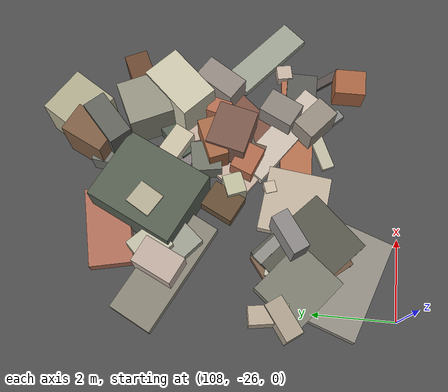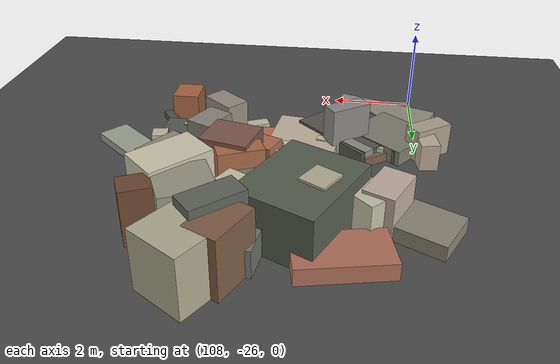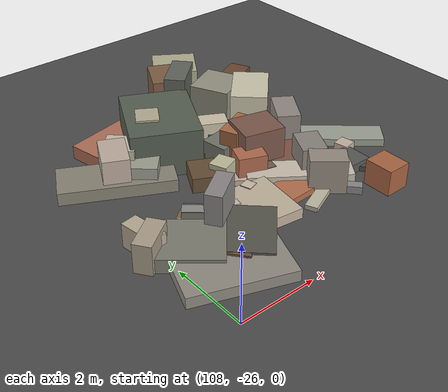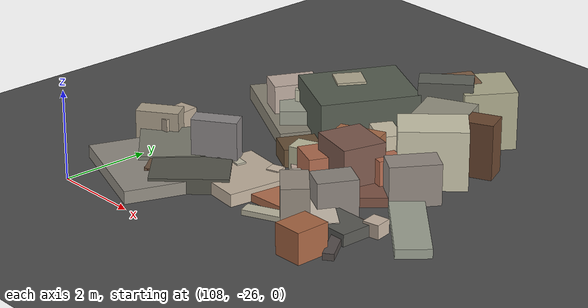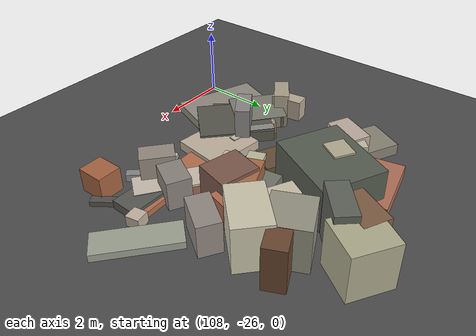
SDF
<sdf version="1.6">
 <world name="navitas_arena">
  <model name="ground_plane">
   <static>true</static>
   <link name="link">
    <collision name="collision">
     <geometry><plane><normal>0 0 1</normal><size>400 400</size></plane></geometry>
     <surface><friction><ode><mu>0.800</mu><mu2>0.800</mu2></ode></friction></surface>
    </collision>
    <visual name="visual">
     <cast_shadows>false</cast_shadows>
     <geometry><plane><normal>0 0 1</normal><size>400 400</size></plane></geometry>
     <material>
      <specular>0.04 0.04 0.04 1</specular>
      <script>
       <uri>file://media/materials/scripts/navitas_asphalt.material</uri>
       <name>Navitas/RealArenaAsphalt</name>
      </script>
     </material>
    </visual>
   </link>
  </model>
  <model name="deb_zor_1">
   <static>true</static>
   <pose>110.441 -19.929 0.000 0 0 0</pose>
   <link name="link">
    <collision name="col_0">
     <pose>0.712 -0.750 0.099 0.000 0.000 0.765</pose>
     <geometry><box><size>0.413 0.359 0.197</size></box></geometry>
    </collision>
    <visual name="vis_0">
     <pose>0.712 -0.750 0.099 0.000 0.000 0.765</pose>
     <geometry><box><size>0.413 0.359 0.197</size></box></geometry>
     <material>
      <ambient>0.44 0.28 0.24 1</ambient>
      <diffuse>0.48 0.30 0.26 1</diffuse>
      <specular>0.05 0.05 0.045 1</specular>
     </material>
    </visual>
    <collision name="col_1">
     <pose>-0.822 0.943 0.188 0.000 0.000 3.354</pose>
     <geometry><box><size>1.928 1.060 0.376</size></box></geometry>
    </collision>
    <visual name="vis_1">
     <pose>-0.822 0.943 0.188 0.000 0.000 3.354</pose>
     <geometry><box><size>1.928 1.060 0.376</size></box></geometry>
     <material>
      <ambient>0.64 0.40 0.32 1</ambient>
      <diffuse>0.69 0.44 0.35 1</diffuse>
      <specular>0.05 0.05 0.045 1</specular>
     </material>
    </visual>
    <collision name="col_2">
     <pose>0.980 0.314 0.077 0.000 0.000 2.889</pose>
     <geometry><box><size>0.251 0.249 0.154</size></box></geometry>
    </collision>
    <visual name="vis_2">
     <pose>0.980 0.314 0.077 0.000 0.000 2.889</pose>
     <geometry><box><size>0.251 0.249 0.154</size></box></geometry>
     <material>
      <ambient>0.55 0.55 0.52 1</ambient>
      <diffuse>0.60 0.60 0.56 1</diffuse>
      <specular>0.05 0.05 0.045 1</specular>
     </material>
    </visual>
    <collision name="col_3">
     <pose>0.528 0.338 0.084 0.000 0.000 1.215</pose>
     <geometry><box><size>2.171 0.161 0.168</size></box></geometry>
    </collision>
    <visual name="vis_3">
     <pose>0.528 0.338 0.084 0.000 0.000 1.215</pose>
     <geometry><box><size>2.171 0.161 0.168</size></box></geometry>
     <material>
      <ambient>0.47 0.48 0.44 1</ambient>
      <diffuse>0.50 0.52 0.47 1</diffuse>
      <specular>0.05 0.05 0.045 1</specular>
     </material>
    </visual>
    <collision name="col_4">
     <pose>-1.295 -0.167 0.457 0.000 0.000 2.353</pose>
     <geometry><box><size>0.825 0.739 0.914</size></box></geometry>
    </collision>
    <visual name="vis_4">
     <pose>-1.295 -0.167 0.457 0.000 0.000 2.353</pose>
     <geometry><box><size>0.825 0.739 0.914</size></box></geometry>
     <material>
      <ambient>0.71 0.69 0.61 1</ambient>
      <diffuse>0.76 0.75 0.66 1</diffuse>
      <specular>0.05 0.05 0.045 1</specular>
     </material>
    </visual>
   </link>
  </model>
  <model name="deb_zor_29">
   <static>true</static>
   <pose>111.769 -22.338 0.000 0 0 0</pose>
   <link name="link">
    <collision name="col_0">
     <pose>0.445 -0.607 0.061 0.000 0.000 3.070</pose>
     <geometry><box><size>0.476 0.255 0.122</size></box></geometry>
    </collision>
    <visual name="vis_0">
     <pose>0.445 -0.607 0.061 0.000 0.000 3.070</pose>
     <geometry><box><size>0.476 0.255 0.122</size></box></geometry>
     <material>
      <ambient>0.34 0.30 0.30 1</ambient>
      <diffuse>0.37 0.32 0.32 1</diffuse>
      <specular>0.05 0.05 0.045 1</specular>
     </material>
    </visual>
    <collision name="col_1">
     <pose>-0.780 -0.469 0.155 0.000 0.000 3.458</pose>
     <geometry><box><size>0.293 0.284 0.310</size></box></geometry>
    </collision>
    <visual name="vis_1">
     <pose>-0.780 -0.469 0.155 0.000 0.000 3.458</pose>
     <geometry><box><size>0.293 0.284 0.310</size></box></geometry>
     <material>
      <ambient>0.75 0.69 0.61 1</ambient>
      <diffuse>0.81 0.74 0.66 1</diffuse>
      <specular>0.05 0.05 0.045 1</specular>
     </material>
    </visual>
    <collision name="col_2">
     <pose>0.214 0.630 0.082 0.000 0.000 4.083</pose>
     <geometry><box><size>2.214 1.535 0.163</size></box></geometry>
    </collision>
    <visual name="vis_2">
     <pose>0.214 0.630 0.082 0.000 0.000 4.083</pose>
     <geometry><box><size>2.214 1.535 0.163</size></box></geometry>
     <material>
      <ambient>0.73 0.64 0.58 1</ambient>
      <diffuse>0.78 0.69 0.63 1</diffuse>
      <specular>0.05 0.05 0.045 1</specular>
     </material>
    </visual>
    <collision name="col_3">
     <pose>-0.764 -0.787 0.115 0.000 0.000 3.619</pose>
     <geometry><box><size>0.326 0.465 0.229</size></box></geometry>
    </collision>
    <visual name="vis_3">
     <pose>-0.764 -0.787 0.115 0.000 0.000 3.619</pose>
     <geometry><box><size>0.326 0.465 0.229</size></box></geometry>
     <material>
      <ambient>0.55 0.53 0.49 1</ambient>
      <diffuse>0.60 0.57 0.53 1</diffuse>
      <specular>0.05 0.05 0.045 1</specular>
     </material>
    </visual>
   </link>
  </model>
  <model name="deb_zor_52">
   <static>true</static>
   <pose>111.951 -20.939 0.000 0 0 0</pose>
   <link name="link">
    <collision name="col_0">
     <pose>-0.234 0.557 0.096 0.000 0.000 1.469</pose>
     <geometry><box><size>1.580 0.176 0.192</size></box></geometry>
    </collision>
    <visual name="vis_0">
     <pose>-0.234 0.557 0.096 0.000 0.000 1.469</pose>
     <geometry><box><size>1.580 0.176 0.192</size></box></geometry>
     <material>
      <ambient>0.43 0.29 0.20 1</ambient>
      <diffuse>0.46 0.31 0.21 1</diffuse>
      <specular>0.05 0.05 0.045 1</specular>
     </material>
    </visual>
    <collision name="col_1">
     <pose>0.053 0.534 0.223 0.000 0.000 0.735</pose>
     <geometry><box><size>0.964 0.388 0.445</size></box></geometry>
    </collision>
    <visual name="vis_1">
     <pose>0.053 0.534 0.223 0.000 0.000 0.735</pose>
     <geometry><box><size>0.964 0.388 0.445</size></box></geometry>
     <material>
      <ambient>0.31 0.35 0.31 1</ambient>
      <diffuse>0.34 0.38 0.33 1</diffuse>
      <specular>0.05 0.05 0.045 1</specular>
     </material>
    </visual>
    <collision name="col_2">
     <pose>-0.386 -0.221 0.291 0.000 0.000 1.740</pose>
     <geometry><box><size>0.731 0.771 0.581</size></box></geometry>
    </collision>
    <visual name="vis_2">
     <pose>-0.386 -0.221 0.291 0.000 0.000 1.740</pose>
     <geometry><box><size>0.731 0.771 0.581</size></box></geometry>
     <material>
      <ambient>0.41 0.43 0.38 1</ambient>
      <diffuse>0.45 0.46 0.41 1</diffuse>
      <specular>0.05 0.05 0.045 1</specular>
     </material>
    </visual>
    <collision name="col_3">
     <pose>-0.155 0.540 0.379 0.000 0.000 2.654</pose>
     <geometry><box><size>0.803 0.523 0.758</size></box></geometry>
    </collision>
    <visual name="vis_3">
     <pose>-0.155 0.540 0.379 0.000 0.000 2.654</pose>
     <geometry><box><size>0.803 0.523 0.758</size></box></geometry>
     <material>
      <ambient>0.74 0.70 0.61 1</ambient>
      <diffuse>0.80 0.76 0.66 1</diffuse>
      <specular>0.05 0.05 0.045 1</specular>
     </material>
    </visual>
   </link>
  </model>
  <model name="deb_zor_69">
   <static>true</static>
   <pose>108.692 -22.921 0.000 0 0 0</pose>
   <link name="link">
    <collision name="col_0">
     <pose>-0.104 -0.722 0.183 0.000 0.000 2.451</pose>
     <geometry><box><size>1.564 1.412 0.365</size></box></geometry>
    </collision>
    <visual name="vis_0">
     <pose>-0.104 -0.722 0.183 0.000 0.000 2.451</pose>
     <geometry><box><size>1.564 1.412 0.365</size></box></geometry>
     <material>
      <ambient>0.45 0.45 0.41 1</ambient>
      <diffuse>0.49 0.49 0.44 1</diffuse>
      <specular>0.05 0.05 0.045 1</specular>
     </material>
    </visual>
    <collision name="col_1">
     <pose>0.169 0.038 0.104 0.000 0.000 0.628</pose>
     <geometry><box><size>1.047 0.298 0.207</size></box></geometry>
    </collision>
    <visual name="vis_1">
     <pose>0.169 0.038 0.104 0.000 0.000 0.628</pose>
     <geometry><box><size>1.047 0.298 0.207</size></box></geometry>
     <material>
      <ambient>0.46 0.36 0.28 1</ambient>
      <diffuse>0.49 0.38 0.30 1</diffuse>
      <specular>0.05 0.05 0.045 1</specular>
     </material>
    </visual>
    <collision name="col_2">
     <pose>0.841 -0.065 0.182 0.000 0.000 2.425</pose>
     <geometry><box><size>1.123 0.283 0.364</size></box></geometry>
    </collision>
    <visual name="vis_2">
     <pose>0.841 -0.065 0.182 0.000 0.000 2.425</pose>
     <geometry><box><size>1.123 0.283 0.364</size></box></geometry>
     <material>
      <ambient>0.51 0.51 0.49 1</ambient>
      <diffuse>0.56 0.55 0.53 1</diffuse>
      <specular>0.05 0.05 0.045 1</specular>
     </material>
    </visual>
    <collision name="col_3">
     <pose>0.865 -0.132 0.159 0.000 0.000 2.965</pose>
     <geometry><box><size>1.616 0.211 0.318</size></box></geometry>
    </collision>
    <visual name="vis_3">
     <pose>0.865 -0.132 0.159 0.000 0.000 2.965</pose>
     <geometry><box><size>1.616 0.211 0.318</size></box></geometry>
     <material>
      <ambient>0.72 0.70 0.62 1</ambient>
      <diffuse>0.77 0.75 0.67 1</diffuse>
      <specular>0.05 0.05 0.045 1</specular>
     </material>
    </visual>
    <collision name="col_4">
     <pose>-0.867 -0.057 0.322 0.000 0.000 1.725</pose>
     <geometry><box><size>0.954 0.437 0.643</size></box></geometry>
    </collision>
    <visual name="vis_4">
     <pose>-0.867 -0.057 0.322 0.000 0.000 1.725</pose>
     <geometry><box><size>0.954 0.437 0.643</size></box></geometry>
     <material>
      <ambient>0.67 0.62 0.55 1</ambient>
      <diffuse>0.73 0.67 0.59 1</diffuse>
      <specular>0.05 0.05 0.045 1</specular>
     </material>
    </visual>
    <collision name="col_5">
     <pose>-0.944 -0.392 0.389 0.000 0.000 2.186</pose>
     <geometry><box><size>0.455 0.961 0.778</size></box></geometry>
    </collision>
    <visual name="vis_5">
     <pose>-0.944 -0.392 0.389 0.000 0.000 2.186</pose>
     <geometry><box><size>0.455 0.961 0.778</size></box></geometry>
     <material>
      <ambient>0.63 0.59 0.51 1</ambient>
      <diffuse>0.68 0.63 0.55 1</diffuse>
      <specular>0.05 0.05 0.045 1</specular>
     </material>
    </visual>
   </link>
  </model>
  <model name="deb_zor_135">
   <static>true</static>
   <pose>109.284 -20.646 0.000 0 0 0</pose>
   <link name="link">
    <collision name="col_0">
     <pose>-0.075 0.511 0.156 0.000 0.000 1.912</pose>
     <geometry><box><size>2.167 0.295 0.313</size></box></geometry>
    </collision>
    <visual name="vis_0">
     <pose>-0.075 0.511 0.156 0.000 0.000 1.912</pose>
     <geometry><box><size>2.167 0.295 0.313</size></box></geometry>
     <material>
      <ambient>0.57 0.36 0.22 1</ambient>
      <diffuse>0.62 0.39 0.24 1</diffuse>
      <specular>0.05 0.05 0.045 1</specular>
     </material>
    </visual>
    <collision name="col_1">
     <pose>-0.213 0.362 0.172 0.000 0.000 2.957</pose>
     <geometry><box><size>0.377 0.377 0.343</size></box></geometry>
    </collision>
    <visual name="vis_1">
     <pose>-0.213 0.362 0.172 0.000 0.000 2.957</pose>
     <geometry><box><size>0.377 0.377 0.343</size></box></geometry>
     <material>
      <ambient>0.69 0.66 0.57 1</ambient>
      <diffuse>0.74 0.72 0.61 1</diffuse>
      <specular>0.05 0.05 0.045 1</specular>
     </material>
    </visual>
    <collision name="col_2">
     <pose>-0.506 0.303 0.489 0.000 0.000 4.262</pose>
     <geometry><box><size>1.055 0.683 0.978</size></box></geometry>
    </collision>
    <visual name="vis_2">
     <pose>-0.506 0.303 0.489 0.000 0.000 4.262</pose>
     <geometry><box><size>1.055 0.683 0.978</size></box></geometry>
     <material>
      <ambient>0.69 0.63 0.58 1</ambient>
      <diffuse>0.75 0.68 0.63 1</diffuse>
      <specular>0.05 0.05 0.045 1</specular>
     </material>
    </visual>
    <collision name="col_3">
     <pose>0.052 -0.008 0.326 0.000 0.000 2.419</pose>
     <geometry><box><size>0.934 0.901 0.652</size></box></geometry>
    </collision>
    <visual name="vis_3">
     <pose>0.052 -0.008 0.326 0.000 0.000 2.419</pose>
     <geometry><box><size>0.934 0.901 0.652</size></box></geometry>
     <material>
      <ambient>0.57 0.58 0.52 1</ambient>
      <diffuse>0.62 0.63 0.57 1</diffuse>
      <specular>0.05 0.05 0.045 1</specular>
     </material>
    </visual>
    <collision name="col_4">
     <pose>0.095 0.625 0.075 0.000 0.000 2.460</pose>
     <geometry><box><size>0.512 0.324 0.149</size></box></geometry>
    </collision>
    <visual name="vis_4">
     <pose>0.095 0.625 0.075 0.000 0.000 2.460</pose>
     <geometry><box><size>0.512 0.324 0.149</size></box></geometry>
     <material>
      <ambient>0.42 0.42 0.40 1</ambient>
      <diffuse>0.45 0.45 0.43 1</diffuse>
      <specular>0.05 0.05 0.045 1</specular>
     </material>
    </visual>
    <collision name="col_5">
     <pose>-0.544 0.195 0.169 0.000 0.000 2.663</pose>
     <geometry><box><size>2.909 1.119 0.339</size></box></geometry>
    </collision>
    <visual name="vis_5">
     <pose>-0.544 0.195 0.169 0.000 0.000 2.663</pose>
     <geometry><box><size>2.909 1.119 0.339</size></box></geometry>
     <material>
      <ambient>0.50 0.48 0.42 1</ambient>
      <diffuse>0.54 0.52 0.46 1</diffuse>
      <specular>0.05 0.05 0.045 1</specular>
     </material>
    </visual>
   </link>
  </model>
  <model name="deb_zor_253">
   <static>true</static>
   <pose>112.962 -22.105 0.000 0 0 0</pose>
   <link name="link">
    <collision name="col_0">
     <pose>-1.010 -0.368 0.149 0.000 0.000 1.329</pose>
     <geometry><box><size>0.282 0.291 0.298</size></box></geometry>
    </collision>
    <visual name="vis_0">
     <pose>-1.010 -0.368 0.149 0.000 0.000 1.329</pose>
     <geometry><box><size>0.282 0.291 0.298</size></box></geometry>
     <material>
      <ambient>0.42 0.33 0.25 1</ambient>
      <diffuse>0.46 0.36 0.28 1</diffuse>
      <specular>0.05 0.05 0.045 1</specular>
     </material>
    </visual>
    <collision name="col_1">
     <pose>-0.498 -0.094 0.108 0.000 0.000 0.839</pose>
     <geometry><box><size>1.791 1.179 0.215</size></box></geometry>
    </collision>
    <visual name="vis_1">
     <pose>-0.498 -0.094 0.108 0.000 0.000 0.839</pose>
     <geometry><box><size>1.791 1.179 0.215</size></box></geometry>
     <material>
      <ambient>0.47 0.30 0.25 1</ambient>
      <diffuse>0.50 0.33 0.27 1</diffuse>
      <specular>0.05 0.05 0.045 1</specular>
     </material>
    </visual>
    <collision name="col_2">
     <pose>0.615 0.766 0.461 0.000 0.000 0.998</pose>
     <geometry><box><size>1.108 0.625 0.921</size></box></geometry>
    </collision>
    <visual name="vis_2">
     <pose>0.615 0.766 0.461 0.000 0.000 0.998</pose>
     <geometry><box><size>1.108 0.625 0.921</size></box></geometry>
     <material>
      <ambient>0.53 0.50 0.48 1</ambient>
      <diffuse>0.58 0.54 0.51 1</diffuse>
      <specular>0.05 0.05 0.045 1</specular>
     </material>
    </visual>
    <collision name="col_3">
     <pose>-1.083 -0.310 0.100 0.000 0.000 2.501</pose>
     <geometry><box><size>0.254 0.335 0.200</size></box></geometry>
    </collision>
    <visual name="vis_3">
     <pose>-1.083 -0.310 0.100 0.000 0.000 2.501</pose>
     <geometry><box><size>0.254 0.335 0.200</size></box></geometry>
     <material>
      <ambient>0.73 0.69 0.59 1</ambient>
      <diffuse>0.78 0.74 0.63 1</diffuse>
      <specular>0.05 0.05 0.045 1</specular>
     </material>
    </visual>
    <collision name="col_4">
     <pose>-0.999 0.475 0.108 0.000 0.000 1.956</pose>
     <geometry><box><size>1.485 0.803 0.217</size></box></geometry>
    </collision>
    <visual name="vis_4">
     <pose>-0.999 0.475 0.108 0.000 0.000 1.956</pose>
     <geometry><box><size>1.485 0.803 0.217</size></box></geometry>
     <material>
      <ambient>0.35 0.34 0.31 1</ambient>
      <diffuse>0.38 0.37 0.33 1</diffuse>
      <specular>0.05 0.05 0.045 1</specular>
     </material>
    </visual>
    <collision name="col_5">
     <pose>-0.121 0.737 0.385 0.000 0.000 1.312</pose>
     <geometry><box><size>0.559 0.404 0.771</size></box></geometry>
    </collision>
    <visual name="vis_5">
     <pose>-0.121 0.737 0.385 0.000 0.000 1.312</pose>
     <geometry><box><size>0.559 0.404 0.771</size></box></geometry>
     <material>
      <ambient>0.66 0.39 0.29 1</ambient>
      <diffuse>0.71 0.43 0.32 1</diffuse>
      <specular>0.05 0.05 0.045 1</specular>
     </material>
    </visual>
   </link>
  </model>
  <model name="deb_zor_316">
   <static>true</static>
   <pose>113.432 -22.343 0.000 0 0 0</pose>
   <link name="link">
    <collision name="col_0">
     <pose>1.217 -0.106 0.103 0.000 0.000 -0.709</pose>
     <geometry><box><size>2.195 0.747 0.206</size></box></geometry>
    </collision>
    <visual name="vis_0">
     <pose>1.217 -0.106 0.103 0.000 0.000 -0.709</pose>
     <geometry><box><size>2.195 0.747 0.206</size></box></geometry>
     <material>
      <ambient>0.57 0.59 0.53 1</ambient>
      <diffuse>0.62 0.64 0.58 1</diffuse>
      <specular>0.05 0.05 0.045 1</specular>
     </material>
    </visual>
    <collision name="col_1">
     <pose>-0.503 -0.580 0.418 0.000 0.000 -0.474</pose>
     <geometry><box><size>0.654 0.881 0.836</size></box></geometry>
    </collision>
    <visual name="vis_1">
     <pose>-0.503 -0.580 0.418 0.000 0.000 -0.474</pose>
     <geometry><box><size>0.654 0.881 0.836</size></box></geometry>
     <material>
      <ambient>0.51 0.48 0.45 1</ambient>
      <diffuse>0.55 0.52 0.49 1</diffuse>
      <specular>0.05 0.05 0.045 1</specular>
     </material>
    </visual>
    <collision name="col_2">
     <pose>-0.972 -0.715 0.140 0.000 0.000 -0.624</pose>
     <geometry><box><size>2.681 0.747 0.280</size></box></geometry>
    </collision>
    <visual name="vis_2">
     <pose>-0.972 -0.715 0.140 0.000 0.000 -0.624</pose>
     <geometry><box><size>2.681 0.747 0.280</size></box></geometry>
     <material>
      <ambient>0.74 0.70 0.64 1</ambient>
      <diffuse>0.80 0.75 0.69 1</diffuse>
      <specular>0.05 0.05 0.045 1</specular>
     </material>
    </visual>
    <collision name="col_3">
     <pose>0.770 -0.614 0.156 0.000 0.000 1.761</pose>
     <geometry><box><size>0.384 0.376 0.313</size></box></geometry>
    </collision>
    <visual name="vis_3">
     <pose>0.770 -0.614 0.156 0.000 0.000 1.761</pose>
     <geometry><box><size>0.384 0.376 0.313</size></box></geometry>
     <material>
      <ambient>0.73 0.66 0.60 1</ambient>
      <diffuse>0.78 0.71 0.64 1</diffuse>
      <specular>0.05 0.05 0.045 1</specular>
     </material>
    </visual>
   </link>
  </model>
  <model name="deb_zor_324">
   <static>true</static>
   <pose>109.594 -23.956 0.000 0 0 0</pose>
   <link name="link">
    <collision name="col_0">
     <pose>-0.099 0.134 0.173 0.000 0.000 2.382</pose>
     <geometry><box><size>2.176 1.691 0.345</size></box></geometry>
    </collision>
    <visual name="vis_0">
     <pose>-0.099 0.134 0.173 0.000 0.000 2.382</pose>
     <geometry><box><size>2.176 1.691 0.345</size></box></geometry>
     <material>
      <ambient>0.32 0.31 0.28 1</ambient>
      <diffuse>0.34 0.34 0.30 1</diffuse>
      <specular>0.05 0.05 0.045 1</specular>
     </material>
    </visual>
    <collision name="col_1">
     <pose>1.039 0.513 0.142 0.000 0.000 1.445</pose>
     <geometry><box><size>1.572 1.628 0.283</size></box></geometry>
    </collision>
    <visual name="vis_1">
     <pose>1.039 0.513 0.142 0.000 0.000 1.445</pose>
     <geometry><box><size>1.572 1.628 0.283</size></box></geometry>
     <material>
      <ambient>0.70 0.65 0.58 1</ambient>
      <diffuse>0.76 0.70 0.62 1</diffuse>
      <specular>0.05 0.05 0.045 1</specular>
     </material>
    </visual>
    <collision name="col_2">
     <pose>-0.189 0.104 0.166 0.000 0.000 1.397</pose>
     <geometry><box><size>2.045 0.136 0.332</size></box></geometry>
    </collision>
    <visual name="vis_2">
     <pose>-0.189 0.104 0.166 0.000 0.000 1.397</pose>
     <geometry><box><size>2.045 0.136 0.332</size></box></geometry>
     <material>
      <ambient>0.57 0.33 0.26 1</ambient>
      <diffuse>0.62 0.36 0.28 1</diffuse>
      <specular>0.05 0.05 0.045 1</specular>
     </material>
    </visual>
    <collision name="col_3">
     <pose>-0.731 -0.754 0.144 0.000 0.000 2.791</pose>
     <geometry><box><size>2.532 1.532 0.288</size></box></geometry>
    </collision>
    <visual name="vis_3">
     <pose>-0.731 -0.754 0.144 0.000 0.000 2.791</pose>
     <geometry><box><size>2.532 1.532 0.288</size></box></geometry>
     <material>
      <ambient>0.53 0.51 0.47 1</ambient>
      <diffuse>0.57 0.55 0.51 1</diffuse>
      <specular>0.05 0.05 0.045 1</specular>
     </material>
    </visual>
    <collision name="col_4">
     <pose>0.082 0.647 0.585 0.000 0.000 3.745</pose>
     <geometry><box><size>1.003 0.428 1.169</size></box></geometry>
    </collision>
    <visual name="vis_4">
     <pose>0.082 0.647 0.585 0.000 0.000 3.745</pose>
     <geometry><box><size>1.003 0.428 1.169</size></box></geometry>
     <material>
      <ambient>0.51 0.49 0.49 1</ambient>
      <diffuse>0.55 0.53 0.53 1</diffuse>
      <specular>0.05 0.05 0.045 1</specular>
     </material>
    </visual>
    <collision name="col_5">
     <pose>-0.709 0.172 0.169 0.000 0.000 2.246</pose>
     <geometry><box><size>2.187 0.860 0.338</size></box></geometry>
    </collision>
    <visual name="vis_5">
     <pose>-0.709 0.172 0.169 0.000 0.000 2.246</pose>
     <geometry><box><size>2.187 0.860 0.338</size></box></geometry>
     <material>
      <ambient>0.40 0.30 0.23 1</ambient>
      <diffuse>0.43 0.33 0.25 1</diffuse>
      <specular>0.05 0.05 0.045 1</specular>
     </material>
    </visual>
   </link>
  </model>
  <model name="deb_zor_327">
   <static>true</static>
   <pose>113.297 -23.731 0.000 0 0 0</pose>
   <link name="link">
    <collision name="col_0">
     <pose>-0.723 0.353 0.085 0.000 0.000 3.189</pose>
     <geometry><box><size>3.027 0.803 0.170</size></box></geometry>
    </collision>
    <visual name="vis_0">
     <pose>-0.723 0.353 0.085 0.000 0.000 3.189</pose>
     <geometry><box><size>3.027 0.803 0.170</size></box></geometry>
     <material>
      <ambient>0.66 0.41 0.29 1</ambient>
      <diffuse>0.71 0.44 0.31 1</diffuse>
      <specular>0.05 0.05 0.045 1</specular>
     </material>
    </visual>
    <collision name="col_1">
     <pose>-0.247 -0.588 0.103 0.000 0.000 2.299</pose>
     <geometry><box><size>0.477 0.246 0.206</size></box></geometry>
    </collision>
    <visual name="vis_1">
     <pose>-0.247 -0.588 0.103 0.000 0.000 2.299</pose>
     <geometry><box><size>0.477 0.246 0.206</size></box></geometry>
     <material>
      <ambient>0.49 0.50 0.49 1</ambient>
      <diffuse>0.53 0.54 0.53 1</diffuse>
      <specular>0.05 0.05 0.045 1</specular>
     </material>
    </visual>
    <collision name="col_2">
     <pose>0.579 -0.912 0.344 0.000 0.000 1.577</pose>
     <geometry><box><size>0.772 0.669 0.689</size></box></geometry>
    </collision>
    <visual name="vis_2">
     <pose>0.579 -0.912 0.344 0.000 0.000 1.577</pose>
     <geometry><box><size>0.772 0.669 0.689</size></box></geometry>
     <material>
      <ambient>0.62 0.37 0.24 1</ambient>
      <diffuse>0.66 0.40 0.26 1</diffuse>
      <specular>0.05 0.05 0.045 1</specular>
     </material>
    </visual>
    <collision name="col_3">
     <pose>-1.040 -0.270 0.061 0.000 0.000 3.556</pose>
     <geometry><box><size>1.236 0.316 0.122</size></box></geometry>
    </collision>
    <visual name="vis_3">
     <pose>-1.040 -0.270 0.061 0.000 0.000 3.556</pose>
     <geometry><box><size>1.236 0.316 0.122</size></box></geometry>
     <material>
      <ambient>0.70 0.68 0.60 1</ambient>
      <diffuse>0.75 0.73 0.64 1</diffuse>
      <specular>0.05 0.05 0.045 1</specular>
     </material>
    </visual>
    <collision name="col_4">
     <pose>0.620 -0.001 0.073 0.000 0.000 2.191</pose>
     <geometry><box><size>1.757 0.235 0.147</size></box></geometry>
    </collision>
    <visual name="vis_4">
     <pose>0.620 -0.001 0.073 0.000 0.000 2.191</pose>
     <geometry><box><size>1.757 0.235 0.147</size></box></geometry>
     <material>
      <ambient>0.31 0.29 0.28 1</ambient>
      <diffuse>0.34 0.31 0.30 1</diffuse>
      <specular>0.05 0.05 0.045 1</specular>
     </material>
    </visual>
    <collision name="col_5">
     <pose>-0.609 -0.045 0.462 0.000 0.000 4.007</pose>
     <geometry><box><size>0.592 0.936 0.925</size></box></geometry>
    </collision>
    <visual name="vis_5">
     <pose>-0.609 -0.045 0.462 0.000 0.000 4.007</pose>
     <geometry><box><size>0.592 0.936 0.925</size></box></geometry>
     <material>
      <ambient>0.54 0.51 0.46 1</ambient>
      <diffuse>0.59 0.55 0.50 1</diffuse>
      <specular>0.05 0.05 0.045 1</specular>
     </material>
    </visual>
    <collision name="col_6">
     <pose>0.009 0.294 0.131 0.000 0.000 3.128</pose>
     <geometry><box><size>1.794 0.770 0.262</size></box></geometry>
    </collision>
    <visual name="vis_6">
     <pose>0.009 0.294 0.131 0.000 0.000 3.128</pose>
     <geometry><box><size>1.794 0.770 0.262</size></box></geometry>
     <material>
      <ambient>0.33 0.33 0.31 1</ambient>
      <diffuse>0.35 0.35 0.33 1</diffuse>
      <specular>0.05 0.05 0.045 1</specular>
     </material>
    </visual>
   </link>
  </model>
  <model name="deb_zor_331">
   <static>true</static>
   <pose>111.406 -21.141 0.000 0 0 0</pose>
   <link name="link">
    <collision name="col_0">
     <pose>0.128 0.476 0.171 0.000 0.000 1.423</pose>
     <geometry><box><size>0.297 0.439 0.343</size></box></geometry>
    </collision>
    <visual name="vis_0">
     <pose>0.128 0.476 0.171 0.000 0.000 1.423</pose>
     <geometry><box><size>0.297 0.439 0.343</size></box></geometry>
     <material>
      <ambient>0.48 0.45 0.45 1</ambient>
      <diffuse>0.52 0.48 0.49 1</diffuse>
      <specular>0.05 0.05 0.045 1</specular>
     </material>
    </visual>
    <collision name="col_1">
     <pose>-0.493 -0.778 0.278 0.000 0.000 0.368</pose>
     <geometry><box><size>0.526 0.479 0.556</size></box></geometry>
    </collision>
    <visual name="vis_1">
     <pose>-0.493 -0.778 0.278 0.000 0.000 0.368</pose>
     <geometry><box><size>0.526 0.479 0.556</size></box></geometry>
     <material>
      <ambient>0.70 0.68 0.57 1</ambient>
      <diffuse>0.75 0.74 0.62 1</diffuse>
      <specular>0.05 0.05 0.045 1</specular>
     </material>
    </visual>
    <collision name="col_2">
     <pose>0.128 1.091 0.065 0.000 0.000 1.647</pose>
     <geometry><box><size>0.427 0.235 0.131</size></box></geometry>
    </collision>
    <visual name="vis_2">
     <pose>0.128 1.091 0.065 0.000 0.000 1.647</pose>
     <geometry><box><size>0.427 0.235 0.131</size></box></geometry>
     <material>
      <ambient>0.74 0.71 0.62 1</ambient>
      <diffuse>0.80 0.77 0.67 1</diffuse>
      <specular>0.05 0.05 0.045 1</specular>
     </material>
    </visual>
    <collision name="col_3">
     <pose>0.164 -1.041 0.346 0.000 0.000 -0.390</pose>
     <geometry><box><size>0.753 0.580 0.691</size></box></geometry>
    </collision>
    <visual name="vis_3">
     <pose>0.164 -1.041 0.346 0.000 0.000 -0.390</pose>
     <geometry><box><size>0.753 0.580 0.691</size></box></geometry>
     <material>
      <ambient>0.64 0.39 0.29 1</ambient>
      <diffuse>0.69 0.42 0.31 1</diffuse>
      <specular>0.05 0.05 0.045 1</specular>
     </material>
    </visual>
    <collision name="col_4">
     <pose>-0.924 -0.546 0.203 0.000 0.000 -0.472</pose>
     <geometry><box><size>0.695 0.852 0.406</size></box></geometry>
    </collision>
    <visual name="vis_4">
     <pose>-0.924 -0.546 0.203 0.000 0.000 -0.472</pose>
     <geometry><box><size>0.695 0.852 0.406</size></box></geometry>
     <material>
      <ambient>0.37 0.28 0.19 1</ambient>
      <diffuse>0.40 0.31 0.21 1</diffuse>
      <specular>0.05 0.05 0.045 1</specular>
     </material>
    </visual>
    <collision name="col_5">
     <pose>0.509 -0.158 0.496 0.000 0.000 0.395</pose>
     <geometry><box><size>1.040 0.486 0.993</size></box></geometry>
    </collision>
    <visual name="vis_5">
     <pose>0.509 -0.158 0.496 0.000 0.000 0.395</pose>
     <geometry><box><size>1.040 0.486 0.993</size></box></geometry>
     <material>
      <ambient>0.61 0.39 0.26 1</ambient>
      <diffuse>0.66 0.42 0.28 1</diffuse>
      <specular>0.05 0.05 0.045 1</specular>
     </material>
    </visual>
    <collision name="col_6">
     <pose>0.769 -0.600 0.543 0.000 0.000 -0.241</pose>
     <geometry><box><size>1.115 0.983 1.085</size></box></geometry>
    </collision>
    <visual name="vis_6">
     <pose>0.769 -0.600 0.543 0.000 0.000 -0.241</pose>
     <geometry><box><size>1.115 0.983 1.085</size></box></geometry>
     <material>
      <ambient>0.46 0.33 0.28 1</ambient>
      <diffuse>0.49 0.35 0.30 1</diffuse>
      <specular>0.05 0.05 0.045 1</specular>
     </material>
    </visual>
   </link>
  </model>
  <model name="chic_zor_1">
   <static>true</static>
   <pose>111.482 -19.494 0.000 0 0 0</pose>
   <link name="link">
    <collision name="col_0">
     <pose>1.945 0.132 0.622 0.000 0.000 0.441</pose>
     <geometry><box><size>0.950 0.569 1.245</size></box></geometry>
    </collision>
    <visual name="vis_0">
     <pose>1.945 0.132 0.622 0.000 0.000 0.441</pose>
     <geometry><box><size>0.950 0.569 1.245</size></box></geometry>
     <material>
      <ambient>0.38 0.25 0.18 1</ambient>
      <diffuse>0.42 0.28 0.19 1</diffuse>
      <specular>0.05 0.05 0.045 1</specular>
     </material>
    </visual>
    <collision name="col_1">
     <pose>0.885 1.506 0.662 0.000 0.000 0.999</pose>
     <geometry><box><size>1.175 1.206 1.325</size></box></geometry>
    </collision>
    <visual name="vis_1">
     <pose>0.885 1.506 0.662 0.000 0.000 0.999</pose>
     <geometry><box><size>1.175 1.206 1.325</size></box></geometry>
     <material>
      <ambient>0.64 0.63 0.52 1</ambient>
      <diffuse>0.69 0.68 0.56 1</diffuse>
      <specular>0.05 0.05 0.045 1</specular>
     </material>
    </visual>
    <collision name="col_2">
     <pose>1.679 -0.868 0.663 0.000 0.000 0.814</pose>
     <geometry><box><size>1.488 0.978 1.326</size></box></geometry>
    </collision>
    <visual name="vis_2">
     <pose>1.679 -0.868 0.663 0.000 0.000 0.814</pose>
     <geometry><box><size>1.488 0.978 1.326</size></box></geometry>
     <material>
      <ambient>0.74 0.73 0.63 1</ambient>
      <diffuse>0.80 0.78 0.68 1</diffuse>
      <specular>0.05 0.05 0.045 1</specular>
     </material>
    </visual>
    <collision name="col_3">
     <pose>1.203 -0.057 0.627 0.000 0.000 2.014</pose>
     <geometry><box><size>1.104 1.146 1.254</size></box></geometry>
    </collision>
    <visual name="vis_3">
     <pose>1.203 -0.057 0.627 0.000 0.000 2.014</pose>
     <geometry><box><size>1.104 1.146 1.254</size></box></geometry>
     <material>
      <ambient>0.54 0.53 0.47 1</ambient>
      <diffuse>0.59 0.58 0.51 1</diffuse>
      <specular>0.05 0.05 0.045 1</specular>
     </material>
    </visual>
    <collision name="col_4">
     <pose>-1.027 -0.440 0.619 0.000 0.000 1.114</pose>
     <geometry><box><size>2.234 1.826 1.238</size></box></geometry>
    </collision>
    <visual name="vis_4">
     <pose>-1.027 -0.440 0.619 0.000 0.000 1.114</pose>
     <geometry><box><size>2.234 1.826 1.238</size></box></geometry>
     <material>
      <ambient>0.31 0.34 0.30 1</ambient>
      <diffuse>0.34 0.37 0.32 1</diffuse>
      <specular>0.05 0.05 0.045 1</specular>
     </material>
    </visual>
    <collision name="col_5">
     <pose>-1.380 -0.402 0.645 0.000 0.000 2.595</pose>
     <geometry><box><size>0.593 0.642 1.291</size></box></geometry>
    </collision>
    <visual name="vis_5">
     <pose>-1.380 -0.402 0.645 0.000 0.000 2.595</pose>
     <geometry><box><size>0.593 0.642 1.291</size></box></geometry>
     <material>
      <ambient>0.66 0.63 0.54 1</ambient>
      <diffuse>0.71 0.68 0.58 1</diffuse>
      <specular>0.05 0.05 0.045 1</specular>
     </material>
    </visual>
    <collision name="col_6">
     <pose>-0.063 0.533 0.306 0.000 0.000 2.994</pose>
     <geometry><box><size>0.619 1.122 0.612</size></box></geometry>
    </collision>
    <visual name="vis_6">
     <pose>-0.063 0.533 0.306 0.000 0.000 2.994</pose>
     <geometry><box><size>0.619 1.122 0.612</size></box></geometry>
     <material>
      <ambient>0.43 0.43 0.41 1</ambient>
      <diffuse>0.46 0.46 0.44 1</diffuse>
      <specular>0.05 0.05 0.045 1</specular>
     </material>
    </visual>
    <collision name="col_7">
     <pose>0.470 0.728 0.758 0.000 0.000 0.731</pose>
     <geometry><box><size>1.189 0.574 1.515</size></box></geometry>
    </collision>
    <visual name="vis_7">
     <pose>0.470 0.728 0.758 0.000 0.000 0.731</pose>
     <geometry><box><size>1.189 0.574 1.515</size></box></geometry>
     <material>
      <ambient>0.35 0.36 0.34 1</ambient>
      <diffuse>0.38 0.39 0.36 1</diffuse>
      <specular>0.05 0.05 0.045 1</specular>
     </material>
    </visual>
    <collision name="col_8">
     <pose>0.253 1.147 0.663 0.000 0.000 1.110</pose>
     <geometry><box><size>1.110 0.743 1.326</size></box></geometry>
    </collision>
    <visual name="vis_8">
     <pose>0.253 1.147 0.663 0.000 0.000 1.110</pose>
     <geometry><box><size>1.110 0.743 1.326</size></box></geometry>
     <material>
      <ambient>0.46 0.34 0.25 1</ambient>
      <diffuse>0.50 0.37 0.27 1</diffuse>
      <specular>0.05 0.05 0.045 1</specular>
     </material>
    </visual>
   </link>
  </model>
 </world>
</sdf>
